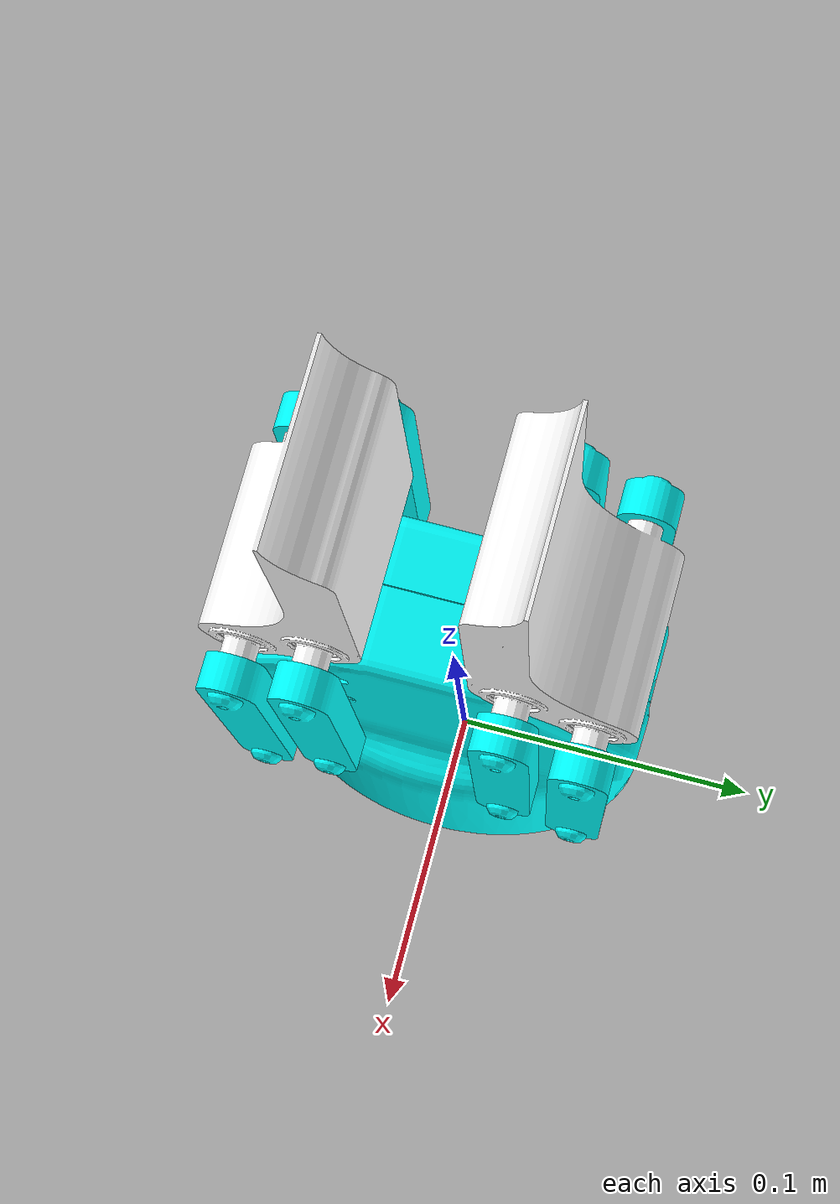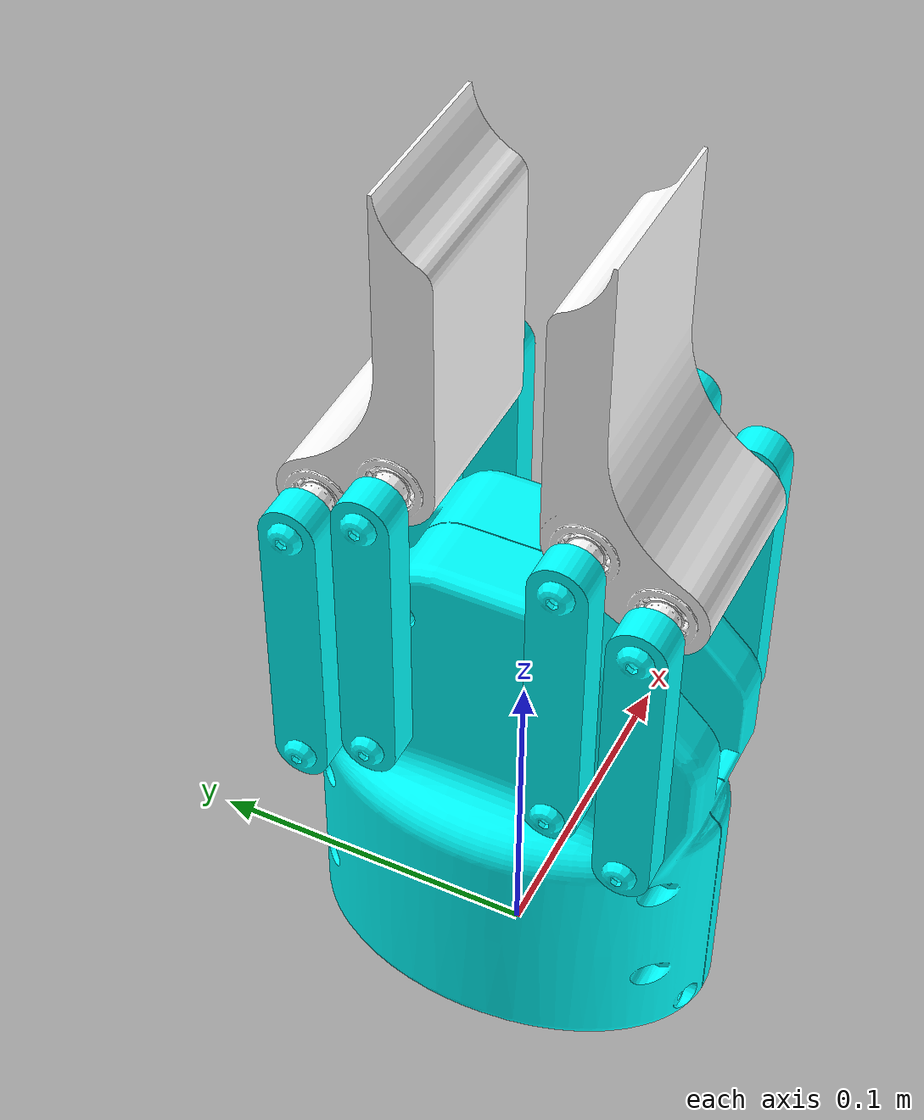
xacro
<?xml version="1.0" ?>

<robot name="gripper" xmlns:xacro="http://ros.org/wiki/xacro">

<xacro:include filename="$(find apc_gripper)/urdf/joints.xacro"/>
<xacro:include filename="$(find apc_gripper)/urdf/gripper.gazebo"/>

  <!-- BASE LINK -->

    <link name="gripper_body">
      <inertial>
        <mass value="0.1" />
        <origin rpy="0 0 0" xyz="0 0 0.063" />
        <inertia ixx="0.13292157" ixy="0.0" ixz="0" iyy="0.8980362" iyz="0" izz="0.6991288" />
      </inertial>
      <collision>
        <origin rpy="0 0 0" xyz="0 0 0" />
        <geometry>
          <mesh filename="package://apc_gripper/meshes/mesh_soporte.stl" scale="0.001 0.001 0.001"/>
        </geometry>
      </collision>
      <visual>
        <origin rpy="0 0 0" xyz="0 0 0" />
        <geometry>
          <mesh filename="package://apc_gripper/meshes/mesh_soporte.stl" scale="0.001 0.001 0.001"/>
        </geometry>
        <material name="blug">
         <color rgba="0 1 1 1"/>
        </material>
      </visual>
    </link>

  <!-- LINKS -->

  <link name="left_ext">
    <inertial>
      <mass value="0.1" />
      <origin rpy="0 0 0" xyz="-0.031 0 0.04" />
      <inertia ixx="0.0000213613" ixy="0" ixz="0" iyy="0.0000595838" iyz="0" izz="0.0000394382" />
    </inertial>
      <collision>
        <origin rpy="0 0 0" xyz="0 0 0" />
        <geometry>
          <mesh filename="package://apc_gripper/meshes/mesh_eslabon.stl" scale="0.001 0.001 0.001"/>
        </geometry>
      </collision>
      <visual>
        <origin rpy="0 0 0" xyz="0 0 0" />
        <geometry>
          <mesh filename="package://apc_gripper/meshes/mesh_eslabon.stl" scale="0.001 0.001 0.001"/>
        </geometry>
        <material name="blug">
         <color rgba="0 1 1 1"/>
        </material>
      </visual>
    </link>

  <link name="left_int">
    <inertial>
      <mass value="0.1" />
      <origin rpy="0 0 0" xyz="-0.031 0 0.04" />
      <inertia ixx="0.0000213613" ixy="0" ixz="0" iyy="0.0000595838" iyz="0" izz="0.0000394382" />
    </inertial>
      <collision>
        <origin rpy="0 0 0" xyz="0 0 0" />
        <geometry>
          <mesh filename="package://apc_gripper/meshes/mesh_eslabon.stl" scale="0.001 0.001 0.001"/>
        </geometry>
      </collision>
      <visual>
        <origin rpy="0 0 0" xyz="0 0 0" />
        <geometry>
          <mesh filename="package://apc_gripper/meshes/mesh_eslabon.stl" scale="0.001 0.001 0.001"/>
        </geometry>
        <material name="blug">
         <color rgba="0 1 1 1"/>
        </material>
      </visual>
    </link>

  <link name="right_ext">
    <inertial>
      <mass value="0.1" />
      <origin rpy="0 0 0" xyz="-0.031 0 0.04" />
      <inertia ixx="0.0000213613" ixy="0" ixz="0" iyy="0.0000595838" iyz="0" izz="0.0000394382" />
    </inertial>
      <collision>
        <origin rpy="0 0 0" xyz="0 0 0" />
        <geometry>
          <mesh filename="package://apc_gripper/meshes/mesh_eslabon.stl" scale="0.001 0.001 0.001"/>
        </geometry>
      </collision>
      <visual>
        <origin rpy="0 0 0" xyz="0 0 0" />
        <geometry>
          <mesh filename="package://apc_gripper/meshes/mesh_eslabon.stl" scale="0.001 0.001 0.001"/>
        </geometry>
        <material name="blug">
         <color rgba="0 1 1 1"/>
        </material>
      </visual>
    </link>

  <link name="right_int">
    <inertial>
      <mass value="0.1" />
      <origin rpy="0 0 0" xyz="-0.031 0 0.04" />
      <inertia ixx="0.0000213613" ixy="0" ixz="0" iyy="0.0000595838" iyz="0" izz="0.0000394382" />
    </inertial>
      <collision>
        <origin rpy="0 0 0" xyz="0 0 0" />
        <geometry>
          <mesh filename="package://apc_gripper/meshes/mesh_eslabon.stl" scale="0.001 0.001 0.001"/>
        </geometry>
      </collision>
      <visual>
        <origin rpy="0 0 0" xyz="0 0 0" />
        <geometry>
          <mesh filename="package://apc_gripper/meshes/mesh_eslabon.stl" scale="0.001 0.001 0.001"/>
        </geometry>
        <material name="blug">
         <color rgba="0 1 1 1"/>
        </material>
      </visual>
    </link>

  <!-- FINGERS -->

  <!-- LEFT FINGER -->

  <link name="left_finger">
    <inertial>
      <mass value="0.1" />
      <origin rpy="0 0 0" xyz="-0.031 0.018 0.032" />
      <inertia ixx="0.0000847702" ixy="0" ixz="0" iyy="0.0000955040" iyz="0" izz="0.0000331406" />
    </inertial>
      <collision>
        <origin rpy="0 0 0" xyz="0 0 0" />
        <geometry>
          <mesh filename="package://apc_gripper/meshes/mesh_dedo.stl" scale="0.001 0.001 0.001"/>
        </geometry>
      </collision>
      <visual>
        <origin rpy="0 0 0" xyz="0 0 0" />
        <geometry>
          <mesh filename="package://apc_gripper/meshes/mesh_dedo.stl" scale="0.001 0.001 0.001"/>
        </geometry>
        <material name="white">
         <color rgba="1 1 1 1"/>
        </material>
      </visual>
    </link>

  <!-- RIGHT FINGER -->

<link name="right_finger">
  <inertial>
    <mass value="0.1" />
    <origin rpy="0 0 ${pi}" xyz="-0.031 -0.018 0.032" />
    <inertia ixx="0.0000847702" ixy="0" ixz="0" iyy="0.0000955040" iyz="0" izz="0.0000331406" />
  </inertial>
      <collision>
        <origin rpy="0 0 ${pi}" xyz="-0.0620 0 0" />
        <geometry>
          <mesh filename="package://apc_gripper/meshes/mesh_dedo.stl" scale="0.001 0.001 0.001"/>
        </geometry>
      </collision>
      <visual>
        <origin rpy="0 0 ${pi}" xyz="-0.0620 0 0" />
        <geometry>
          <mesh filename="package://apc_gripper/meshes/mesh_dedo.stl" scale="0.001 0.001 0.001"/>
        </geometry>
        <material name="white">
         <color rgba="1 1 1 1"/>
        </material>
      </visual>
    </link>

  <!-- END - Robot description -->

  <!-- Used for fixing robot to Gazebo 'base_link' -->
  <link name="world"/>
  <joint name="fixed" type="fixed">
    <parent link="world"/>
    <child link="gripper_body"/>
  </joint>
</robot>

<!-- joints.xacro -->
<robot xmlns:xacro="http://ros.org/wiki/xacro">

  <!-- LINKS_BASE JOINTS -->

    <joint name="gripper_body__left_ext" type="revolute">
      <axis xyz="1 0 0" />
      <limit effort="1000" lower="-0.15" upper="0.8" velocity="0.5" />
      <origin rpy="0 0 0" xyz="0.0311 -0.046785 0.093" />
      <parent link="gripper_body" />
      <child link="left_ext" />
    </joint>
    <transmission name="trans_gripper_body__left_ext">
  		<type>transmission_interface/SimpleTransmission</type>
  		<joint name="gripper_body__left_ext">
  			<hardwareInterface>hardware_interface/PositionJointInterface</hardwareInterface>
  		</joint>
  		<actuator name="motor_gripper_body__left_ext">
  			<hardwareInterface>hardware_interface/PositionJointInterface</hardwareInterface>
  			<mechanicalReduction>1</mechanicalReduction>
  		</actuator>
    </transmission>

    <joint name="gripper_body__left_int" type="revolute">
      <axis xyz="1 0 0" />
      <limit effort="1000" lower="-3.14" upper="3.14" velocity="0.5" />
      <origin rpy="0 0 0" xyz="0.0311 -0.026 0.105" />
      <parent link="gripper_body" />
      <child link="left_int" />
      <mimic joint="gripper_body__left_ext" multiplier="1" offset="0" />
    </joint>

    <joint name="gripper_body__right_ext" type="revolute">
      <axis xyz="1 0 0" />
      <limit effort="1000" lower="-3.14" upper="3.14" velocity="0.5" />
      <origin rpy="0 0 0" xyz="0.0311 0.046785 0.093" />
      <parent link="gripper_body" />
      <child link="right_ext" />
      <mimic joint="gripper_body__left_ext" multiplier="-1" offset="0" />
    </joint>

    <joint name="gripper_body__right_int" type="revolute">
      <axis xyz="1 0 0" />
      <limit effort="1000" lower="-3.14" upper="3.14" velocity="0.5" />
      <origin rpy="0 0 0" xyz="0.0311 0.026 0.105" />
      <parent link="gripper_body" />
      <child link="right_int" />
      <mimic joint="gripper_body__right_ext" multiplier="1" offset="0" />
    </joint>

  <!-- FINGERS -->

  <!-- LEFT FINGER -->

      <joint name="left_ext__left_finger" type="revolute">
      <axis xyz="1 0 0" />
      <limit effort="1000" lower="-3.14" upper="3.14" velocity="0.5" />
      <origin rpy="0 0 0" xyz="0 0 0.080" />
      <parent link="left_ext" />
      <child link="left_finger" />
      <mimic joint="gripper_body__left_ext" multiplier="-1" offset="0" />

    </joint>

  <!-- RIGHT FINGER -->

      <joint name="right_ext__right_finger" type="revolute">
      <axis xyz="1 0 0" />
      <limit effort="1000" lower="-3.14" upper="3.14" velocity="0.5" />
      <origin rpy="0 0 0" xyz="0 0 0.080" />
      <parent link="right_ext" />
      <child link="right_finger" />
      <mimic joint="gripper_body__right_ext" multiplier="-1" offset="0" />
    </joint>

  <!-- END - Robot description -->

</robot>
